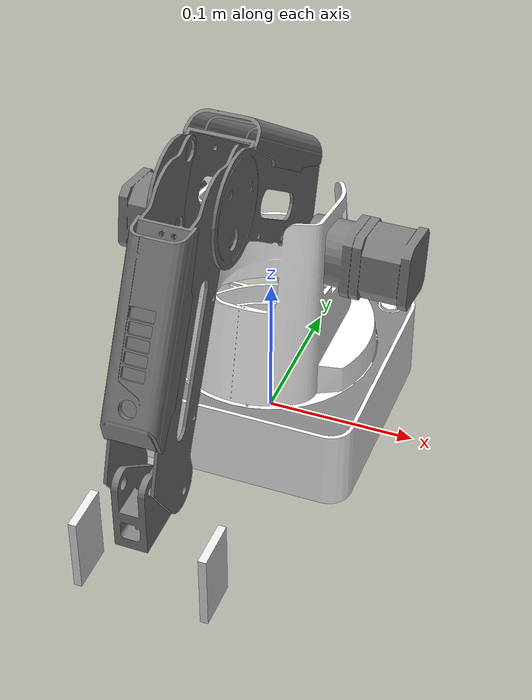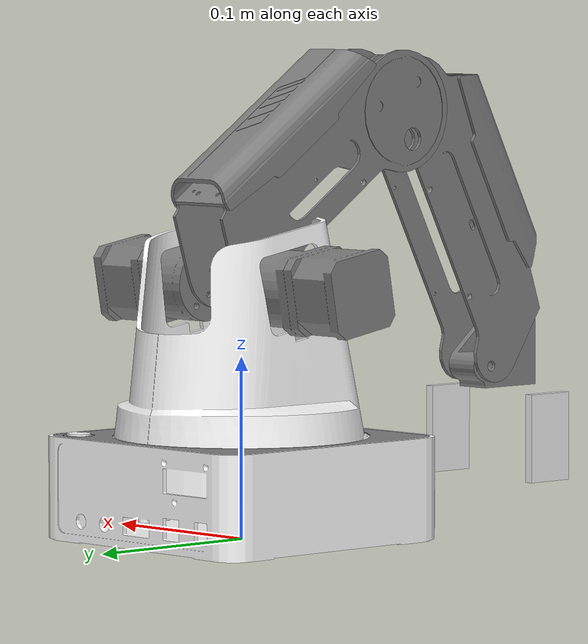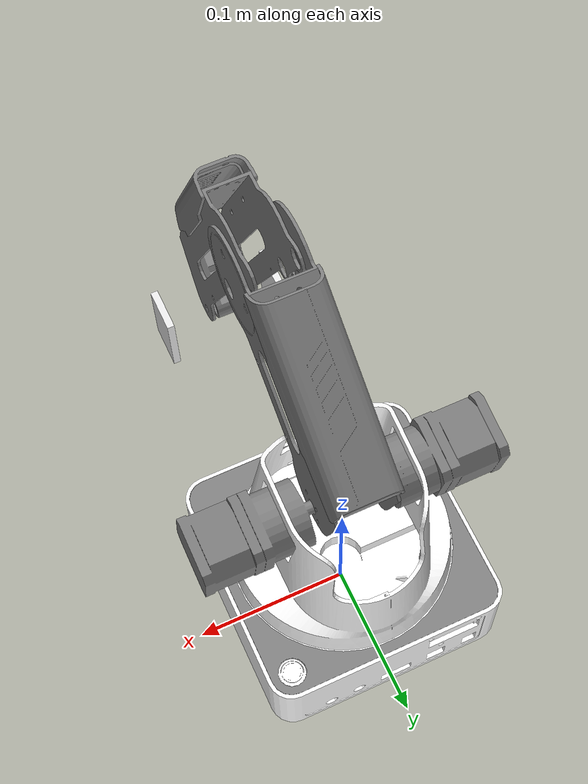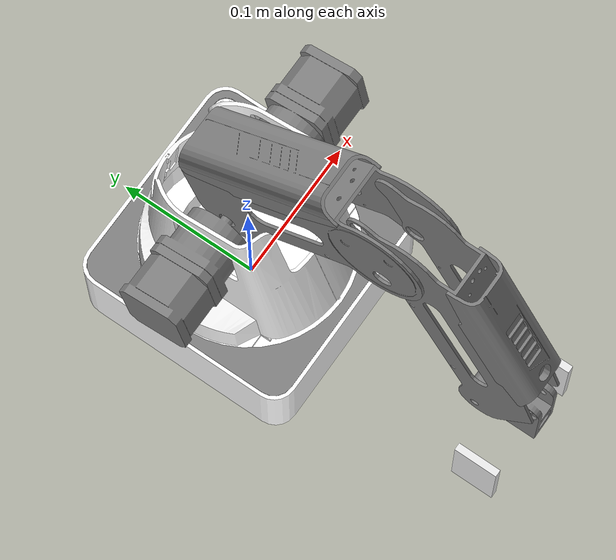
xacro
<?xml version="1.0" encoding="utf-8"?>
<robot
  name="magician" xmlns:xacro="http://www.ros.org/wiki/xacro">

  <xacro:include filename="$(find magician_description)/urdf/magician.gazebo" />

  <xacro:include filename="$(find magician_description)/urdf/magician_transmission.xacro" />

  <xacro:property name="joint1_lower" value="-2.1816"/>
  <xacro:property name="joint1_upper" value="2.1816"/>
  <xacro:property name="joint2_lower" value="0.35"/>
  <xacro:property name="joint2_upper" value="1.57"/>
  <xacro:property name="joint3_lower" value="0.62"/>
  <xacro:property name="joint3_upper" value="1.57"/>

  <link
    name="magician_base">
    <inertial>
      <origin
        xyz="-0.00035432 -0.00080566 0.023187"
        rpy="0 0 0" />
      <mass
        value="0.23009" />
      <inertia
        ixx="0.00065784"
        ixy="-4.8312E-06"
        ixz="1.2493E-06"
        iyy="0.00069673"
        iyz="4.3823E-07"
        izz="0.0012945" />
    </inertial>
    <visual>
      <origin
        xyz="0 0 0"
        rpy="0 0 0" />
      <geometry>
        <mesh
          filename="package://magician_description/meshes/magician_base.STL" />
      </geometry>
      <material
        name="">
        <color
          rgba="1 1 1 1" />
      </material>
    </visual>
    <collision>
      <origin
        xyz="0 0 0"
        rpy="0 0 0" />
      <geometry>
        <mesh
          filename="package://magician_description/meshes/magician_base.STL" />
      </geometry>
    </collision>
  </link>
  <link
    name="magician_link1">
    <inertial>
      <origin
        xyz="0.00024809 -0.00074864 0.040762"
        rpy="0 0 0" />
      <mass
        value="0.081469" />
      <inertia
        ixx="0.00020859"
        ixy="8.163E-08"
        ixz="4.6298E-07"
        iyy="9.5838E-05"
        iyz="3.2246E-06"
        izz="0.00015246" />
    </inertial>
    <visual>
      <origin
        xyz="0 0 0"
        rpy="0 0 0" />
      <geometry>
        <mesh
          filename="package://magician_description/meshes/magician_link1.STL" />
      </geometry>
      <material
        name="">
        <color
          rgba="1 1 1 1" />
      </material>
    </visual>
    <collision>
      <origin
        xyz="0 0 0"
        rpy="0 0 0" />
      <geometry>
        <mesh
          filename="package://magician_description/meshes/magician_link1.STL" />
      </geometry>
    </collision>
  </link>
  <joint
    name="magician_joint1"
    type="revolute">
    <origin
      xyz="0 0 0.0569"
      rpy="0 0 0" />
    <parent
      link="magician_base" />
    <child
      link="magician_link1" />
    <axis
      xyz="0 0 1" />
    <limit
      lower="${joint1_lower}"
      upper="${joint1_upper}"
      effort="6"
      velocity="1.57" />
  </joint>
  <link
    name="magician_link2">
    <inertial>
      <origin
        xyz="-0.076276 0.029436 2.1815E-06"
        rpy="0 0 0" />
      <mass
        value="0.047726" />
      <inertia
        ixx="3.5818E-05"
        ixy="-4.4023E-06"
        ixz="-7.1903E-09"
        iyy="0.00014556"
        iyz="2.3353E-09"
        izz="0.00015167" />
    </inertial>
    <visual>
      <origin
        xyz="0 0 0"
        rpy="0 0 0" />
      <geometry>
        <mesh
          filename="package://magician_description/meshes/magician_link2.STL" />
      </geometry>
      <material
        name="">
        <color
          rgba="0.501960784313725 0.501960784313725 0.501960784313725 1" />
      </material>
    </visual>
    <collision>
      <origin
        xyz="0 0 0"
        rpy="0 0 0" />
      <geometry>
        <mesh
          filename="package://magician_description/meshes/magician_link2.STL" />
      </geometry>
    </collision>
  </link>
  <joint
    name="magician_joint2"
    type="revolute">
    <origin
      xyz="0 0 0.0821"
      rpy="0 1.5707963267948966 0" />
    <parent
      link="magician_link1" />
    <child
      link="magician_link2" />
    <axis
      xyz="0 0 1" />
    <limit
      lower="${joint2_lower}"
      upper="${joint2_upper}"
      effort="6"
      velocity="1.57" />
  </joint>
  <link
    name="magician_link3">
    <inertial>
      <origin
        xyz="0.029209 -0.054163 -8.4342E-05"
        rpy="0 0 0" />
      <mass
        value="0.042983" />
      <inertia
        ixx="0.00013733"
        ixy="-9.7605E-08"
        ixz="-1.1091E-07"
        iyy="2.3432E-05"
        iyz="3.5599E-07"
        izz="0.00014558" />
    </inertial>
    <visual>
      <origin
        xyz="0 0 0"
        rpy="0 0 0" />
      <geometry>
        <mesh
          filename="package://magician_description/meshes/magician_link3.STL" />
      </geometry>
      <material
        name="">
        <color
          rgba="0.501960784313725 0.501960784313725 0.501960784313725 1" />
      </material>
    </visual>
    <collision>
      <origin
        xyz="0 0 0"
        rpy="0 0 0" />
      <geometry>
        <mesh
          filename="package://magician_description/meshes/magician_link3.STL" />
      </geometry>
    </collision>
  </link>
  <joint
    name="magician_fake_joint1"
    type="revolute">
    <origin
      xyz="-0.135 0 0"
      rpy="-3.1415926535897932 0 -3.1415926535897932" />
    <parent
      link="magician_link2" />
    <child
      link="magician_fake_link" />
    <axis
      xyz="0 0 -1" />
    <limit
      lower="${-1*joint2_upper}"
      upper="${-1*joint2_lower}"
      effort="6"
      velocity="1.57" />
    <mimic
      joint="magician_joint2"
      multiplier="-1"
      offset="0"/>
  </joint>
  <link name="magician_fake_link">
    <inertial>
      <origin
        xyz="0 0 0"
        rpy="0 0 0" />
      <mass
        value="0.025" />
      <inertia
        ixx="2.5E-4"
        ixy="0"
        ixz="0"
        iyy="2.5E-4"
        iyz="0"
        izz="2.5E-4" />
    </inertial>
  </link>
  <joint
    name="magician_joint3"
    type="revolute">
    <origin
      xyz="0 0 0"
      rpy="0 0 0" />
    <parent
      link="magician_fake_link" />
    <child
      link="magician_link3" />
    <axis
      xyz="0 0 -1" />
    <limit
      lower="${joint3_lower}"
      upper="${joint3_upper}"
      effort="6"
      velocity="1.57" />
  </joint>
  <link
    name="magician_link4">
    <inertial>
      <origin
        xyz="-0.019694 0.0034659 0.0001155"
        rpy="0 0 0" />
      <mass
        value="0.020564" />
      <inertia
        ixx="3.7203E-06"
        ixy="7.6009E-07"
        ixz="3.146E-08"
        iyy="4.5639E-06"
        iyz="-5.7432E-08"
        izz="6.427E-06" />
    </inertial>
    <visual>
      <origin
        xyz="0 0 0"
        rpy="0 0 0" />
      <geometry>
        <mesh
          filename="package://magician_description/meshes/magician_link4.STL" />
      </geometry>
      <material
        name="">
        <color
          rgba="0.501960784313725 0.501960784313725 0.501960784313725 1" />
      </material>
    </visual>
    <collision>
      <origin
        xyz="0 0 0"
        rpy="0 0 0" />
      <geometry>
        <mesh
          filename="package://magician_description/meshes/magician_link4.STL" />
      </geometry>
    </collision>
  </link>
  <joint
    name="magician_fake_joint2"
    type="revolute">
    <origin
      xyz="0 -0.147 0"
      rpy="3.1415926535897932 0 1.5707963267948966" />
    <parent
      link="magician_link3" />
    <child
      link="magician_link4" />
    <axis
      xyz="0 0 1" />
    <limit
      lower="${-1*joint3_upper}"
      upper="${-1*joint3_lower}"
      effort="60"
      velocity="1.57" />
    <mimic
      joint="magician_joint3"
      multiplier="-1"
      offset="0"/>
  </joint>
  <link name="magician_arm_end"/>
  <joint
    name="magician_link4_joint1"
    type="fixed">
    <origin
      xyz="0 0 0"
      rpy="-1.5707963267948966 3.1415926535897932 0" />
    <parent
      link="magician_link4" />
    <child
      link="magician_arm_end" />
  </joint>
  <link
    name="magician_link3_surface">
    <inertial>
      <origin
        xyz="0.059385 -0.050176 -2.6308E-06"
        rpy="0 0 0" />
      <mass
        value="0.015005" />
      <inertia
        ixx="1.8842E-05"
        ixy="-3.9211E-07"
        ixz="4.9615E-10"
        iyy="3.6097E-06"
        iyz="-1.2797E-09"
        izz="1.6901E-05" />
    </inertial>
    <visual>
      <origin
        xyz="0 0 0"
        rpy="0 0 0" />
      <geometry>
        <mesh
          filename="package://magician_description/meshes/magician_link3_surface.STL" />
      </geometry>
      <material
        name="">
        <color
          rgba="0.501960784313725 0.501960784313725 0.501960784313725 1" />
      </material>
    </visual>
    <collision>
      <origin
        xyz="0 0 0"
        rpy="0 0 0" />
      <geometry>
        <mesh
          filename="package://magician_description/meshes/magician_link3_surface.STL" />
      </geometry>
    </collision>
  </link>
  <joint
    name="magician_link3_joint1"
    type="fixed">
    <origin
      xyz="0 0 0"
      rpy="0 0 0" />
    <parent
      link="magician_link3" />
    <child
      link="magician_link3_surface" />
    <axis
      xyz="0 0 0" />
  </joint>
  <link
    name="magician_link2_surface">
    <inertial>
      <origin
        xyz="-0.066726 0.060698 5.5359E-07"
        rpy="0 0 0" />
      <mass
        value="0.018846" />
      <inertia
        ixx="5.9574E-06"
        ixy="-5.1053E-08"
        ixz="3.3782E-09"
        iyy="2.8034E-05"
        iyz="-1.6336E-11"
        izz="2.3816E-05" />
    </inertial>
    <visual>
      <origin
        xyz="0 0 0"
        rpy="0 0 0" />
      <geometry>
        <mesh
          filename="package://magician_description/meshes/magician_link2_surface.STL" />
      </geometry>
      <material
        name="">
        <color
          rgba="0.501960784313725 0.501960784313725 0.501960784313725 1" />
      </material>
    </visual>
    <collision>
      <origin
        xyz="0 0 0"
        rpy="0 0 0" />
      <geometry>
        <mesh
          filename="package://magician_description/meshes/magician_link2_surface.STL" />
      </geometry>
    </collision>
  </link>
  <joint
    name="magician_link2_joint1"
    type="fixed">
    <origin
      xyz="0 0 0"
      rpy="0 0 0" />
    <parent
      link="magician_link2" />
    <child
      link="magician_link2_surface" />
    <axis
      xyz="0 0 0" />
  </joint>
  <link
    name="magician_servos">
    <inertial>
      <origin
        xyz="-3.3282E-06 0 0.0821"
        rpy="0 0 0" />
      <mass
        value="0.21777" />
      <inertia
        ixx="5.4372E-05"
        ixy="-1.467E-18"
        ixz="-1.6192E-19"
        iyy="0.00011754"
        iyz="7.4188E-21"
        izz="0.00011754" />
    </inertial>
    <visual>
      <origin
        xyz="0 0 0"
        rpy="0 0 0" />
      <geometry>
        <mesh
          filename="package://magician_description/meshes/magician_servos.STL" />
      </geometry>
      <material
        name="">
        <color
          rgba="0.501960784313725 0.501960784313725 0.501960784313725 1" />
      </material>
    </visual>
    <collision>
      <origin
        xyz="0 0 0"
        rpy="0 0 0" />
      <geometry>
        <mesh
          filename="package://magician_description/meshes/magician_servos.STL" />
      </geometry>
    </collision>
  </link>
  <joint
    name="magician_link1_joint1"
    type="fixed">
    <origin
      xyz="0 0 0"
      rpy="0 0 0" />
    <parent
      link="magician_link1" />
    <child
      link="magician_servos" />
    <axis
      xyz="0 0 0" />
  </joint>
  <link
    name="magician_base_surface">
    <inertial>
      <origin
        xyz="0 0 0"
        rpy="0 0 0" />
      <mass
        value="0" />
      <inertia
        ixx="0"
        ixy="0"
        ixz="0"
        iyy="0"
        iyz="0"
        izz="0" />
    </inertial>
    <visual>
      <origin
        xyz="0 0 0"
        rpy="0 0 0" />
      <geometry>
        <mesh
          filename="package://magician_description/meshes/magician_base_surface.STL" />
      </geometry>
      <material
        name="">
        <color
          rgba="0.501960784313725 0.501960784313725 0.501960784313725 1" />
      </material>
    </visual>
    <collision>
      <origin
        xyz="0 0 0"
        rpy="0 0 0" />
      <geometry>
        <mesh
          filename="package://magician_description/meshes/magician_base_surface.STL" />
      </geometry>
    </collision>
  </link>
  <joint
    name="magician_base_joint1"
    type="fixed">
    <origin
      xyz="0 0 0"
      rpy="0 0 0" />
    <parent
      link="magician_base" />
    <child
      link="magician_base_surface" />
    <axis
      xyz="0 0 0" />
  </joint>
  <link name="magician_end_turnplate"/>
  <joint
    name="magician_fake_joint3"
    type="revolute">
    <origin
      xyz="0 0 0"
      rpy="0 0 0" />
    <parent
      link="magician_arm_end" />
    <child
      link="magician_end_turnplate" />
    <axis
      xyz="0 0 1" />
    <limit
      lower="${-1*joint1_upper}"
      upper="${-1*joint1_lower}"
      effort="6"
      velocity="1.57" />
    <mimic
      joint="magician_joint1"
      multiplier="-1"
      offset="0"/>
  </joint>
  <link name="magician_end_link"/>
  <joint
    name="magician_end_turnplate_joint1"
    type="fixed">
    <origin
      xyz="0 0 0"
      rpy="0 0 0" />
    <parent
      link="magician_end_turnplate" />
    <child
      link="magician_end_link" />
    <axis
      xyz="0 0 0" />
  </joint>
  <link name="magician_end_effctor"/>
  <joint
    name="magician_end_link_joint1"
    type="fixed">
    <origin
      xyz="0 0 0"
      rpy="0 0 0" />
    <parent
      link="magician_end_link" />
    <child
      link="magician_end_effctor" />
    <axis
      xyz="0 0 0" />
  </joint>

  <!--paw-->

  <xacro:include filename="$(find oryxbot_gazebo)/robots/paw.urdf.xacro" />

    <joint name="finger_joint1" type="prismatic">
        <parent link="magician_link4"/>
        <child link="gripper_finger_link1"/>
        <origin xyz="0.0 0 0" rpy="-1.5707 0 -1.5707"/>
        <axis xyz="0 1 0" />
        <limit effort="1000" lower="0" upper="0.04" velocity="50.0"/>
        <dynamics damping="0" friction="0"/>
    </joint>

    <joint name="finger_joint2" type="prismatic">
        <parent link="magician_link4"/>
        <child link="gripper_finger_link2"/>
        <origin xyz="0.0 0 0" rpy="-1.5707 0 -1.5707"/>
        <axis xyz="0 1 0" />
        <limit effort="1000" lower="-0.04" upper="0" velocity="50.0"/>
        <dynamics damping="0" friction="0"/>
    </joint>

    <joint name="grasping_frame_joint" type="fixed">
      <parent link="magician_link4"/>
      <child link="grasping_frame"/>
      <origin xyz="0 -0.06 0" rpy="-1.5707 0 -1.5707"/>
    </joint>

	<gazebo>
		<plugin name="gazebo_grasp_fix" filename="libgazebo_grasp_fix.so">
            <arm>
                <arm_name>magician_arm</arm_name>
                <palm_link>magician_link4</palm_link>
                <gripper_link>gripper_finger_link1</gripper_link>
                <gripper_link>gripper_finger_link2</gripper_link>
            </arm>
			<forces_angle_tolerance>100</forces_angle_tolerance>
			<update_rate>4</update_rate>
			<grip_count_threshold>4</grip_count_threshold>
			<max_grip_count>8</max_grip_count>
			<release_tolerance>0.005</release_tolerance>
			<disable_collisions_on_attach>false</disable_collisions_on_attach>
			<contact_topic>__default_topic__</contact_topic>
		</plugin>
	</gazebo>

</robot>

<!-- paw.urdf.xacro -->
<robot name="paw" xmlns:xacro="http://www.ros.org/wiki/xacro">

    <!-- Left gripper -->
    <xacro:property name="left_gripper_len" value="0.05" />
    <xacro:property name="left_gripper_width" value="0.005" />
    <xacro:property name="left_gripper_height" value="0.03" />

    <!-- Right gripper -->
    <xacro:property name="right_gripper_len" value="0.05" />
    <xacro:property name="right_gripper_width" value="0.005" />
    <xacro:property name="right_gripper_height" value="0.03" />
    <!-- Inertial matrix -->
    <xacro:macro name="inertial_matrix" params="mass">
        <inertial>
            <mass value="${mass}" />
            <inertia ixx="1.0" ixy="0.0" ixz="0.0" iyy="0.5" iyz="0.0" izz="1.0" />
        </inertial>
    </xacro:macro>
    <!-- //////////////////////////////////////   gripper   ////////////////////////////////////////////// -->
    <!-- LEFT GRIPPER AFT LINK -->
    <!-- LEFT GRIPPER AFT LINK -->
    <link name="gripper_finger_link1">
        <visual>
            <origin xyz="0.04 -0.04 -0.02"/>
            <geometry>
                <box size="${left_gripper_len} ${left_gripper_width} ${left_gripper_height}" />
            </geometry>
            <material name="White" />
        </visual>
        <collision>
            <origin xyz="0.04 -0.04 -0.02"/>
            <geometry>
                <box size="${left_gripper_len} ${left_gripper_width} ${left_gripper_height}" />
            </geometry>
        </collision>
        <xacro:inertial_matrix mass="0.02"/>
    </link>

    <!-- RIGHT GRIPPER AFT LINK -->
    <link name="gripper_finger_link2">
        <visual>
            <origin xyz="0.04 0.04 -0.02"/>
            <geometry>
                <box size="${right_gripper_len} ${right_gripper_width} ${right_gripper_height}" />
            </geometry>
            <material name="White" />
        </visual>
        <collision>
            <origin xyz="0.04 0.04 -0.02"/>
            <geometry>
                <box size="${right_gripper_len} ${right_gripper_width} ${right_gripper_height}" />
            </geometry>
        </collision>
        <xacro:inertial_matrix mass="0.02"/>
    </link>

    <!-- Grasping frame -->
    <link name="grasping_frame"/>

    <gazebo reference="gripper_finger_link1">
        <material>Gazebo/White</material>
    </gazebo>
    <gazebo reference="gripper_finger_link2">
        <material>Gazebo/White</material>
    </gazebo>

</robot>
